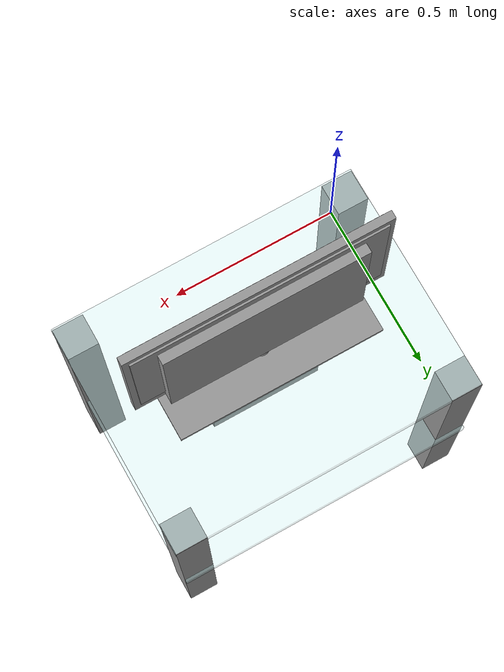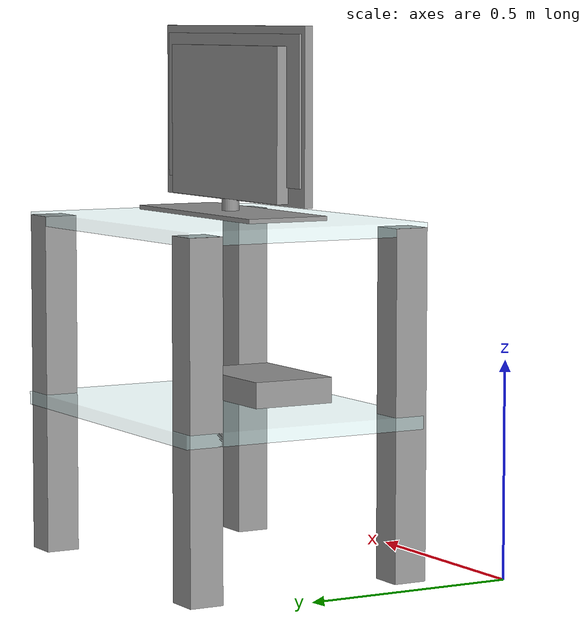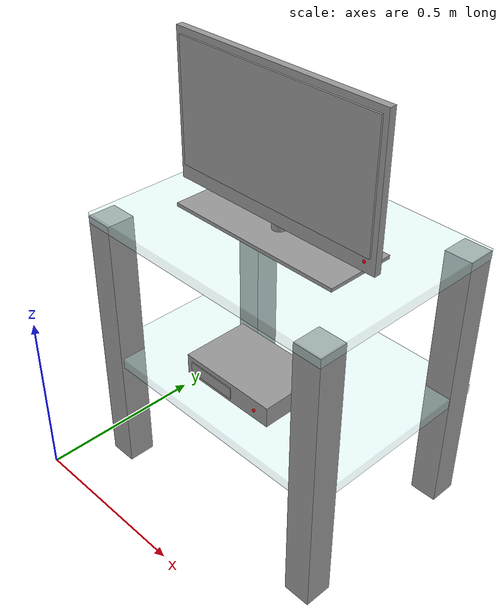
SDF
<?xml version='1.0'?>
<sdf version='1.7'>
  <model name='my_tv_set'>
    <link name='link'>
      <inertial>
        <mass>1</mass>
        <inertia>
          <ixx>0.166667</ixx>
          <ixy>0</ixy>
          <ixz>0</ixz>
          <iyy>0.166667</iyy>
          <iyz>0</iyz>
          <izz>0.166667</izz>
        </inertia>
        <pose>0 0 0 0 -0 0</pose>
      </inertial>
      <self_collide>0</self_collide>
      <enable_wind>0</enable_wind>
      <kinematic>0</kinematic>
      <pose>0.111837 0.203266 0 0 -0 0</pose>
      <gravity>1</gravity>
      <visual name='visual'>
        <geometry>
          <box>
            <size>0.08 0.08 0.8</size>
          </box>
        </geometry>
        <material>
          <script>
            <name>Gazebo/Grey</name>
            <uri>file://media/materials/scripts/gazebo.material</uri>
          </script>
          <shader type='pixel'>
            <normal_map>__default__</normal_map>
          </shader>
          <ambient>0.6 0.6 0.6 1</ambient>
          <diffuse>0.7 0.7 0.7 1</diffuse>
          <specular>0.01 0.01 0.01 1</specular>
          <emissive>0 0 0 1</emissive>
        </material>
        <pose>0 0 0.4 0 -0 0</pose>
        <transparency>0</transparency>
        <cast_shadows>1</cast_shadows>
      </visual>
      <collision name='collision'>
        <laser_retro>0</laser_retro>
        <max_contacts>10</max_contacts>
        <pose>0 0 0.4 0 -0 0</pose>
        <geometry>
          <box>
            <size>0.08 0.08 0.8</size>
          </box>
        </geometry>
        <surface>
          <friction>
            <ode>
              <mu>1</mu>
              <mu2>1</mu2>
              <fdir1>0 0 0</fdir1>
              <slip1>0</slip1>
              <slip2>0</slip2>
            </ode>
            <torsional>
              <coefficient>1</coefficient>
              <patch_radius>0</patch_radius>
              <surface_radius>0</surface_radius>
              <use_patch_radius>1</use_patch_radius>
              <ode>
                <slip>0</slip>
              </ode>
            </torsional>
          </friction>
          <bounce>
            <restitution_coefficient>0</restitution_coefficient>
            <threshold>1e+06</threshold>
          </bounce>
          <contact>
            <collide_without_contact>0</collide_without_contact>
            <collide_without_contact_bitmask>1</collide_without_contact_bitmask>
            <collide_bitmask>1</collide_bitmask>
            <ode>
              <soft_cfm>0</soft_cfm>
              <soft_erp>0.2</soft_erp>
              <kp>1e+13</kp>
              <kd>1</kd>
              <max_vel>0.01</max_vel>
              <min_depth>0</min_depth>
            </ode>
            <bullet>
              <split_impulse>1</split_impulse>
              <split_impulse_penetration_threshold>-0.01</split_impulse_penetration_threshold>
              <soft_cfm>0</soft_cfm>
              <soft_erp>0.2</soft_erp>
              <kp>1e+13</kp>
              <kd>1</kd>
            </bullet>
          </contact>
        </surface>
      </collision>
    </link>
    <link name='link_0'>
      <inertial>
        <mass>1</mass>
        <inertia>
          <ixx>0.166667</ixx>
          <ixy>0</ixy>
          <ixz>0</ixz>
          <iyy>0.166667</iyy>
          <iyz>0</iyz>
          <izz>0.166667</izz>
        </inertia>
        <pose>0 0 0 0 -0 0</pose>
      </inertial>
      <pose>0.470061 0.471071 -0.037751 0 -0 0</pose>
      <gravity>1</gravity>
      <self_collide>0</self_collide>
      <kinematic>0</kinematic>
      <enable_wind>0</enable_wind>
      <visual name='visual'>
        <pose>0 0 0.4 0 -0 0</pose>
        <geometry>
          <box>
            <size>0.8 0.6 0.03</size>
          </box>
        </geometry>
        <material>
          <lighting>1</lighting>
          <script>
            <uri>file://media/materials/scripts/gazebo.material</uri>
            <name>Gazebo/Grey</name>
          </script>
          <shader type='pixel'>
            <normal_map>__default__</normal_map>
          </shader>
          <ambient>0.79 1 1 0.3</ambient>
          <diffuse>0.79 1 1 0.3</diffuse>
          <specular>0.1 0.1 0.1 1</specular>
          <emissive>0 0 0 1</emissive>
        </material>
        <transparency>0.5</transparency>
        <cast_shadows>1</cast_shadows>
      </visual>
      <collision name='collision'>
        <laser_retro>0</laser_retro>
        <max_contacts>10</max_contacts>
        <pose>0 0 0.4 0 -0 0</pose>
        <geometry>
          <box>
            <size>0.8 0.6 0.03</size>
          </box>
        </geometry>
        <surface>
          <friction>
            <ode>
              <mu>1</mu>
              <mu2>1</mu2>
              <fdir1>0 0 0</fdir1>
              <slip1>0</slip1>
              <slip2>0</slip2>
            </ode>
            <torsional>
              <coefficient>1</coefficient>
              <patch_radius>0</patch_radius>
              <surface_radius>0</surface_radius>
              <use_patch_radius>1</use_patch_radius>
              <ode>
                <slip>0</slip>
              </ode>
            </torsional>
          </friction>
          <bounce>
            <restitution_coefficient>0</restitution_coefficient>
            <threshold>1e+06</threshold>
          </bounce>
          <contact>
            <collide_without_contact>0</collide_without_contact>
            <collide_without_contact_bitmask>1</collide_without_contact_bitmask>
            <collide_bitmask>1</collide_bitmask>
            <ode>
              <soft_cfm>0</soft_cfm>
              <soft_erp>0.2</soft_erp>
              <kp>1e+13</kp>
              <kd>1</kd>
              <max_vel>0.01</max_vel>
              <min_depth>0</min_depth>
            </ode>
            <bullet>
              <split_impulse>1</split_impulse>
              <split_impulse_penetration_threshold>-0.01</split_impulse_penetration_threshold>
              <soft_cfm>0</soft_cfm>
              <soft_erp>0.2</soft_erp>
              <kp>1e+13</kp>
              <kd>1</kd>
            </bullet>
          </contact>
        </surface>
      </collision>
    </link>
    <link name='link_0_0'>
      <inertial>
        <mass>1</mass>
        <inertia>
          <ixx>0.166667</ixx>
          <ixy>0</ixy>
          <ixz>0</ixz>
          <iyy>0.166667</iyy>
          <iyz>0</iyz>
          <izz>0.166667</izz>
        </inertia>
        <pose>0 0 0 0 -0 0</pose>
      </inertial>
      <pose>0.470061 0.361348 0.412162 0 -0 0</pose>
      <gravity>1</gravity>
      <self_collide>0</self_collide>
      <kinematic>0</kinematic>
      <enable_wind>0</enable_wind>
      <visual name='visual'>
        <pose>0 0 0 0 -0 0</pose>
        <geometry>
          <box>
            <size>0.3 0.2 0.06</size>
          </box>
        </geometry>
        <material>
          <lighting>1</lighting>
          <script>
            <uri>file://media/materials/scripts/gazebo.material</uri>
            <name>Gazebo/Grey</name>
          </script>
          <shader type='pixel'>
            <normal_map>__default__</normal_map>
          </shader>
          <ambient>0.2 0.2 0.2 0</ambient>
          <diffuse>0.2 0.2 0.2 1</diffuse>
          <specular>0.01 0.01 0.01 1</specular>
          <emissive>0 0 0 1</emissive>
        </material>
        <transparency>0</transparency>
        <cast_shadows>1</cast_shadows>
      </visual>
      <collision name='collision'>
        <laser_retro>0</laser_retro>
        <max_contacts>10</max_contacts>
        <pose>0 0 0 0 -0 0</pose>
        <geometry>
          <box>
            <size>0.3 0.2 0.06</size>
          </box>
        </geometry>
        <surface>
          <friction>
            <ode>
              <mu>1</mu>
              <mu2>1</mu2>
              <fdir1>0 0 0</fdir1>
              <slip1>0</slip1>
              <slip2>0</slip2>
            </ode>
            <torsional>
              <coefficient>1</coefficient>
              <patch_radius>0</patch_radius>
              <surface_radius>0</surface_radius>
              <use_patch_radius>1</use_patch_radius>
              <ode>
                <slip>0</slip>
              </ode>
            </torsional>
          </friction>
          <bounce>
            <restitution_coefficient>0</restitution_coefficient>
            <threshold>1e+06</threshold>
          </bounce>
          <contact>
            <collide_without_contact>0</collide_without_contact>
            <collide_without_contact_bitmask>1</collide_without_contact_bitmask>
            <collide_bitmask>1</collide_bitmask>
            <ode>
              <soft_cfm>0</soft_cfm>
              <soft_erp>0.2</soft_erp>
              <kp>1e+13</kp>
              <kd>1</kd>
              <max_vel>0.01</max_vel>
              <min_depth>0</min_depth>
            </ode>
            <bullet>
              <split_impulse>1</split_impulse>
              <split_impulse_penetration_threshold>-0.01</split_impulse_penetration_threshold>
              <soft_cfm>0</soft_cfm>
              <soft_erp>0.2</soft_erp>
              <kp>1e+13</kp>
              <kd>1</kd>
            </bullet>
          </contact>
        </surface>
      </collision>
    </link>
    <link name='link_0_1'>
      <inertial>
        <mass>1</mass>
        <inertia>
          <ixx>0.166667</ixx>
          <ixy>0</ixy>
          <ixz>0</ixz>
          <iyy>0.166667</iyy>
          <iyz>0</iyz>
          <izz>0.166667</izz>
        </inertia>
        <pose>0 0 0 0 -0 0</pose>
      </inertial>
      <pose>0.41274 0.328539 0.410532 0 -0 0</pose>
      <gravity>1</gravity>
      <self_collide>0</self_collide>
      <kinematic>0</kinematic>
      <enable_wind>0</enable_wind>
      <visual name='visual'>
        <pose>0 0 0 0 -0 0</pose>
        <geometry>
          <box>
            <size>0.15 0.14 0.035</size>
          </box>
        </geometry>
        <material>
          <lighting>1</lighting>
          <script>
            <uri>file://media/materials/scripts/gazebo.material</uri>
            <name>Gazebo/Grey</name>
          </script>
          <shader type='pixel'>
            <normal_map>__default__</normal_map>
          </shader>
          <ambient>0.3 0.3 0.3 1</ambient>
          <diffuse>0.7 0.7 0.7 1</diffuse>
          <specular>0.01 0.01 0.01 1</specular>
          <emissive>0 0 0 1</emissive>
        </material>
        <transparency>0</transparency>
        <cast_shadows>1</cast_shadows>
      </visual>
      <collision name='collision'>
        <laser_retro>0</laser_retro>
        <max_contacts>10</max_contacts>
        <pose>0 0 0 0 -0 0</pose>
        <geometry>
          <box>
            <size>0.15 0.14 0.035</size>
          </box>
        </geometry>
        <surface>
          <friction>
            <ode>
              <mu>1</mu>
              <mu2>1</mu2>
              <fdir1>0 0 0</fdir1>
              <slip1>0</slip1>
              <slip2>0</slip2>
            </ode>
            <torsional>
              <coefficient>1</coefficient>
              <patch_radius>0</patch_radius>
              <surface_radius>0</surface_radius>
              <use_patch_radius>1</use_patch_radius>
              <ode>
                <slip>0</slip>
              </ode>
            </torsional>
          </friction>
          <bounce>
            <restitution_coefficient>0</restitution_coefficient>
            <threshold>1e+06</threshold>
          </bounce>
          <contact>
            <collide_without_contact>0</collide_without_contact>
            <collide_without_contact_bitmask>1</collide_without_contact_bitmask>
            <collide_bitmask>1</collide_bitmask>
            <ode>
              <soft_cfm>0</soft_cfm>
              <soft_erp>0.2</soft_erp>
              <kp>1e+13</kp>
              <kd>1</kd>
              <max_vel>0.01</max_vel>
              <min_depth>0</min_depth>
            </ode>
            <bullet>
              <split_impulse>1</split_impulse>
              <split_impulse_penetration_threshold>-0.01</split_impulse_penetration_threshold>
              <soft_cfm>0</soft_cfm>
              <soft_erp>0.2</soft_erp>
              <kp>1e+13</kp>
              <kd>1</kd>
            </bullet>
          </contact>
        </surface>
      </collision>
    </link>
    <link name='link_0_clone'>
      <inertial>
        <mass>1</mass>
        <inertia>
          <ixx>0.166667</ixx>
          <ixy>0</ixy>
          <ixz>0</ixz>
          <iyy>0.166667</iyy>
          <iyz>0</iyz>
          <izz>0.166667</izz>
        </inertia>
        <pose>0 0 0 0 -0 0</pose>
      </inertial>
      <pose>0.470453 0.462923 0.393901 4e-06 0.005849 0.001188</pose>
      <gravity>1</gravity>
      <self_collide>0</self_collide>
      <kinematic>0</kinematic>
      <enable_wind>0</enable_wind>
      <visual name='visual'>
        <pose>0 0 0.4 0 -0 0</pose>
        <geometry>
          <box>
            <size>0.8 0.6 0.03</size>
          </box>
        </geometry>
        <material>
          <lighting>1</lighting>
          <script>
            <uri>file://media/materials/scripts/gazebo.material</uri>
            <name>Gazebo/Grey</name>
          </script>
          <shader type='pixel'>
            <normal_map>__default__</normal_map>
          </shader>
          <ambient>0.79 1 1 0.3</ambient>
          <diffuse>0.79 1 1 0.3</diffuse>
          <specular>0.1 0.1 0.1 1</specular>
          <emissive>0 0 0 1</emissive>
        </material>
        <transparency>0.5</transparency>
        <cast_shadows>1</cast_shadows>
      </visual>
      <collision name='collision'>
        <laser_retro>0</laser_retro>
        <max_contacts>10</max_contacts>
        <pose>0 0 0.4 0 -0 0</pose>
        <geometry>
          <box>
            <size>0.8 0.6 0.03</size>
          </box>
        </geometry>
        <surface>
          <friction>
            <ode>
              <mu>1</mu>
              <mu2>1</mu2>
              <fdir1>0 0 0</fdir1>
              <slip1>0</slip1>
              <slip2>0</slip2>
            </ode>
            <torsional>
              <coefficient>1</coefficient>
              <patch_radius>0</patch_radius>
              <surface_radius>0</surface_radius>
              <use_patch_radius>1</use_patch_radius>
              <ode>
                <slip>0</slip>
              </ode>
            </torsional>
          </friction>
          <bounce>
            <restitution_coefficient>0</restitution_coefficient>
            <threshold>1e+06</threshold>
          </bounce>
          <contact>
            <collide_without_contact>0</collide_without_contact>
            <collide_without_contact_bitmask>1</collide_without_contact_bitmask>
            <collide_bitmask>1</collide_bitmask>
            <ode>
              <soft_cfm>0</soft_cfm>
              <soft_erp>0.2</soft_erp>
              <kp>1e+13</kp>
              <kd>1</kd>
              <max_vel>0.01</max_vel>
              <min_depth>0</min_depth>
            </ode>
            <bullet>
              <split_impulse>1</split_impulse>
              <split_impulse_penetration_threshold>-0.01</split_impulse_penetration_threshold>
              <soft_cfm>0</soft_cfm>
              <soft_erp>0.2</soft_erp>
              <kp>1e+13</kp>
              <kd>1</kd>
            </bullet>
          </contact>
        </surface>
      </collision>
    </link>
    <link name='link_1'>
      <inertial>
        <mass>1</mass>
        <inertia>
          <ixx>0.1</ixx>
          <ixy>0</ixy>
          <ixz>0</ixz>
          <iyy>0.1</iyy>
          <iyz>0</iyz>
          <izz>0.1</izz>
        </inertia>
        <pose>0 0 0 0 -0 0</pose>
      </inertial>
      <pose>0.574001 0.261573 0.40938 0 -0 0</pose>
      <gravity>1</gravity>
      <self_collide>0</self_collide>
      <kinematic>0</kinematic>
      <enable_wind>0</enable_wind>
      <visual name='visual'>
        <pose>0 0 0 0 -0 0</pose>
        <geometry>
          <sphere>
            <radius>0.005</radius>
          </sphere>
        </geometry>
        <material>
          <lighting>1</lighting>
          <script>
            <uri>file://media/materials/scripts/gazebo.material</uri>
            <name>Gazebo/Grey</name>
          </script>
          <shader type='pixel'>
            <normal_map>__default__</normal_map>
          </shader>
          <ambient>1 0 0 1</ambient>
          <diffuse>1 0 0 1</diffuse>
          <specular>0.01 0.01 0.01 1</specular>
          <emissive>0.5 0 0 1</emissive>
        </material>
        <transparency>0</transparency>
        <cast_shadows>1</cast_shadows>
      </visual>
      <collision name='collision'>
        <laser_retro>0</laser_retro>
        <max_contacts>10</max_contacts>
        <pose>0 0 0 0 -0 0</pose>
        <geometry>
          <sphere>
            <radius>0.005</radius>
          </sphere>
        </geometry>
        <surface>
          <friction>
            <ode>
              <mu>1</mu>
              <mu2>1</mu2>
              <fdir1>0 0 0</fdir1>
              <slip1>0</slip1>
              <slip2>0</slip2>
            </ode>
            <torsional>
              <coefficient>1</coefficient>
              <patch_radius>0</patch_radius>
              <surface_radius>0</surface_radius>
              <use_patch_radius>1</use_patch_radius>
              <ode>
                <slip>0</slip>
              </ode>
            </torsional>
          </friction>
          <bounce>
            <restitution_coefficient>0</restitution_coefficient>
            <threshold>1e+06</threshold>
          </bounce>
          <contact>
            <collide_without_contact>0</collide_without_contact>
            <collide_without_contact_bitmask>1</collide_without_contact_bitmask>
            <collide_bitmask>1</collide_bitmask>
            <ode>
              <soft_cfm>0</soft_cfm>
              <soft_erp>0.2</soft_erp>
              <kp>1e+13</kp>
              <kd>1</kd>
              <max_vel>0.01</max_vel>
              <min_depth>0</min_depth>
            </ode>
            <bullet>
              <split_impulse>1</split_impulse>
              <split_impulse_penetration_threshold>-0.01</split_impulse_penetration_threshold>
              <soft_cfm>0</soft_cfm>
              <soft_erp>0.2</soft_erp>
              <kp>1e+13</kp>
              <kd>1</kd>
            </bullet>
          </contact>
        </surface>
      </collision>
    </link>
    <link name='link_1_0'>
      <inertial>
        <mass>1</mass>
        <inertia>
          <ixx>0.166667</ixx>
          <ixy>0</ixy>
          <ixz>0</ixz>
          <iyy>0.166667</iyy>
          <iyz>0</iyz>
          <izz>0.166667</izz>
        </inertia>
        <pose>0 0 0 0 -0 0</pose>
      </inertial>
      <pose>0.471646 0.442924 0.818235 0 -0 0</pose>
      <gravity>1</gravity>
      <self_collide>0</self_collide>
      <kinematic>0</kinematic>
      <enable_wind>0</enable_wind>
      <visual name='visual'>
        <pose>0 0 0 0 -0 0</pose>
        <geometry>
          <box>
            <size>0.53 0.2 0.01</size>
          </box>
        </geometry>
        <material>
          <lighting>1</lighting>
          <script>
            <uri>file://media/materials/scripts/gazebo.material</uri>
            <name>Gazebo/Grey</name>
          </script>
          <shader type='pixel'>
            <normal_map>__default__</normal_map>
          </shader>
          <ambient>0.1 0.1 0.1 1</ambient>
          <diffuse>0.3 0.3 0.3 1</diffuse>
          <specular>0.01 0.01 0.01 1</specular>
          <emissive>0 0 0 1</emissive>
        </material>
        <transparency>0</transparency>
        <cast_shadows>1</cast_shadows>
      </visual>
      <collision name='collision'>
        <laser_retro>0</laser_retro>
        <max_contacts>10</max_contacts>
        <pose>0 0 0 0 -0 0</pose>
        <geometry>
          <box>
            <size>0.53 0.2 0.01</size>
          </box>
        </geometry>
        <surface>
          <friction>
            <ode>
              <mu>1</mu>
              <mu2>1</mu2>
              <fdir1>0 0 0</fdir1>
              <slip1>0</slip1>
              <slip2>0</slip2>
            </ode>
            <torsional>
              <coefficient>1</coefficient>
              <patch_radius>0</patch_radius>
              <surface_radius>0</surface_radius>
              <use_patch_radius>1</use_patch_radius>
              <ode>
                <slip>0</slip>
              </ode>
            </torsional>
          </friction>
          <bounce>
            <restitution_coefficient>0</restitution_coefficient>
            <threshold>1e+06</threshold>
          </bounce>
          <contact>
            <collide_without_contact>0</collide_without_contact>
            <collide_without_contact_bitmask>1</collide_without_contact_bitmask>
            <collide_bitmask>1</collide_bitmask>
            <ode>
              <soft_cfm>0</soft_cfm>
              <soft_erp>0.2</soft_erp>
              <kp>1e+13</kp>
              <kd>1</kd>
              <max_vel>0.01</max_vel>
              <min_depth>0</min_depth>
            </ode>
            <bullet>
              <split_impulse>1</split_impulse>
              <split_impulse_penetration_threshold>-0.01</split_impulse_penetration_threshold>
              <soft_cfm>0</soft_cfm>
              <soft_erp>0.2</soft_erp>
              <kp>1e+13</kp>
              <kd>1</kd>
            </bullet>
          </contact>
        </surface>
      </collision>
    </link>
    <link name='link_1_clone'>
      <inertial>
        <mass>1</mass>
        <inertia>
          <ixx>0.1</ixx>
          <ixy>0</ixy>
          <ixz>0</ixz>
          <iyy>0.1</iyy>
          <iyz>0</iyz>
          <izz>0.1</izz>
        </inertia>
        <pose>0 0 0 0 -0 0</pose>
      </inertial>
      <pose>0.762041 0.41864 0.873637 0 -0 0</pose>
      <gravity>1</gravity>
      <self_collide>0</self_collide>
      <kinematic>0</kinematic>
      <enable_wind>0</enable_wind>
      <visual name='visual'>
        <pose>0 0 0 0 -0 0</pose>
        <geometry>
          <sphere>
            <radius>0.005</radius>
          </sphere>
        </geometry>
        <material>
          <lighting>1</lighting>
          <script>
            <uri>file://media/materials/scripts/gazebo.material</uri>
            <name>Gazebo/Grey</name>
          </script>
          <shader type='pixel'>
            <normal_map>__default__</normal_map>
          </shader>
          <ambient>1 0 0 1</ambient>
          <diffuse>1 0 0 1</diffuse>
          <specular>0.01 0.01 0.01 1</specular>
          <emissive>0.5 0 0 1</emissive>
        </material>
        <transparency>0</transparency>
        <cast_shadows>1</cast_shadows>
      </visual>
      <collision name='collision'>
        <laser_retro>0</laser_retro>
        <max_contacts>10</max_contacts>
        <pose>0 0 0 0 -0 0</pose>
        <geometry>
          <sphere>
            <radius>0.005</radius>
          </sphere>
        </geometry>
        <surface>
          <friction>
            <ode>
              <mu>1</mu>
              <mu2>1</mu2>
              <fdir1>0 0 0</fdir1>
              <slip1>0</slip1>
              <slip2>0</slip2>
            </ode>
            <torsional>
              <coefficient>1</coefficient>
              <patch_radius>0</patch_radius>
              <surface_radius>0</surface_radius>
              <use_patch_radius>1</use_patch_radius>
              <ode>
                <slip>0</slip>
              </ode>
            </torsional>
          </friction>
          <bounce>
            <restitution_coefficient>0</restitution_coefficient>
            <threshold>1e+06</threshold>
          </bounce>
          <contact>
            <collide_without_contact>0</collide_without_contact>
            <collide_without_contact_bitmask>1</collide_without_contact_bitmask>
            <collide_bitmask>1</collide_bitmask>
            <ode>
              <soft_cfm>0</soft_cfm>
              <soft_erp>0.2</soft_erp>
              <kp>1e+13</kp>
              <kd>1</kd>
              <max_vel>0.01</max_vel>
              <min_depth>0</min_depth>
            </ode>
            <bullet>
              <split_impulse>1</split_impulse>
              <split_impulse_penetration_threshold>-0.01</split_impulse_penetration_threshold>
              <soft_cfm>0</soft_cfm>
              <soft_erp>0.2</soft_erp>
              <kp>1e+13</kp>
              <kd>1</kd>
            </bullet>
          </contact>
        </surface>
      </collision>
    </link>
    <link name='link_2'>
      <inertial>
        <mass>1</mass>
        <inertia>
          <ixx>0.145833</ixx>
          <ixy>0</ixy>
          <ixz>0</ixz>
          <iyy>0.145833</iyy>
          <iyz>0</iyz>
          <izz>0.125</izz>
        </inertia>
        <pose>0 0 0 0 -0 0</pose>
      </inertial>
      <pose>0.472907 0.442924 0.831235 0 -0 0</pose>
      <gravity>1</gravity>
      <self_collide>0</self_collide>
      <kinematic>0</kinematic>
      <enable_wind>0</enable_wind>
      <visual name='visual'>
        <pose>0 0 0 0 -0 0</pose>
        <geometry>
          <cylinder>
            <radius>0.02</radius>
            <length>0.04</length>
          </cylinder>
        </geometry>
        <material>
          <lighting>1</lighting>
          <script>
            <uri>file://media/materials/scripts/gazebo.material</uri>
            <name>Gazebo/Grey</name>
          </script>
          <shader type='pixel'>
            <normal_map>__default__</normal_map>
          </shader>
          <ambient>0.1 0.1 0.1 0</ambient>
          <diffuse>0.3 0.3 0.3 1</diffuse>
          <specular>0.01 0.01 0.01 1</specular>
          <emissive>0 0 0 1</emissive>
        </material>
        <transparency>0</transparency>
        <cast_shadows>1</cast_shadows>
      </visual>
      <collision name='collision'>
        <laser_retro>0</laser_retro>
        <max_contacts>10</max_contacts>
        <pose>0 0 0 0 -0 0</pose>
        <geometry>
          <cylinder>
            <radius>0.02</radius>
            <length>0.04</length>
          </cylinder>
        </geometry>
        <surface>
          <friction>
            <ode>
              <mu>1</mu>
              <mu2>1</mu2>
              <fdir1>0 0 0</fdir1>
              <slip1>0</slip1>
              <slip2>0</slip2>
            </ode>
            <torsional>
              <coefficient>1</coefficient>
              <patch_radius>0</patch_radius>
              <surface_radius>0</surface_radius>
              <use_patch_radius>1</use_patch_radius>
              <ode>
                <slip>0</slip>
              </ode>
            </torsional>
          </friction>
          <bounce>
            <restitution_coefficient>0</restitution_coefficient>
            <threshold>1e+06</threshold>
          </bounce>
          <contact>
            <collide_without_contact>0</collide_without_contact>
            <collide_without_contact_bitmask>1</collide_without_contact_bitmask>
            <collide_bitmask>1</collide_bitmask>
            <ode>
              <soft_cfm>0</soft_cfm>
              <soft_erp>0.2</soft_erp>
              <kp>1e+13</kp>
              <kd>1</kd>
              <max_vel>0.01</max_vel>
              <min_depth>0</min_depth>
            </ode>
            <bullet>
              <split_impulse>1</split_impulse>
              <split_impulse_penetration_threshold>-0.01</split_impulse_penetration_threshold>
              <soft_cfm>0</soft_cfm>
              <soft_erp>0.2</soft_erp>
              <kp>1e+13</kp>
              <kd>1</kd>
            </bullet>
          </contact>
        </surface>
      </collision>
    </link>
    <link name='link_3'>
      <inertial>
        <mass>1</mass>
        <inertia>
          <ixx>0.166667</ixx>
          <ixy>0</ixy>
          <ixz>0</ixz>
          <iyy>0.166667</iyy>
          <iyz>0</iyz>
          <izz>0.166667</izz>
        </inertia>
        <pose>0 0 0 0 -0 0</pose>
      </inertial>
      <pose>0.469996 0.427043 1.0468 0 -0 0</pose>
      <gravity>1</gravity>
      <self_collide>0</self_collide>
      <kinematic>0</kinematic>
      <enable_wind>0</enable_wind>
      <visual name='visual'>
        <pose>0 0 0 0 -0 0</pose>
        <geometry>
          <box>
            <size>0.65 0.02 0.4</size>
          </box>
        </geometry>
        <material>
          <lighting>1</lighting>
          <script>
            <uri>file://media/materials/scripts/gazebo.material</uri>
            <name>Gazebo/Grey</name>
          </script>
          <shader type='pixel'>
            <normal_map>__default__</normal_map>
          </shader>
          <ambient>0.1 0.1 0.1 1</ambient>
          <diffuse>0.3 0.3 0.3 1</diffuse>
          <specular>0.01 0.01 0.01 1</specular>
          <emissive>0 0 0 1</emissive>
        </material>
        <transparency>0</transparency>
        <cast_shadows>1</cast_shadows>
      </visual>
      <collision name='collision'>
        <laser_retro>0</laser_retro>
        <max_contacts>10</max_contacts>
        <pose>0 0 0 0 -0 0</pose>
        <geometry>
          <box>
            <size>0.65 0.02 0.4</size>
          </box>
        </geometry>
        <surface>
          <friction>
            <ode>
              <mu>1</mu>
              <mu2>1</mu2>
              <fdir1>0 0 0</fdir1>
              <slip1>0</slip1>
              <slip2>0</slip2>
            </ode>
            <torsional>
              <coefficient>1</coefficient>
              <patch_radius>0</patch_radius>
              <surface_radius>0</surface_radius>
              <use_patch_radius>1</use_patch_radius>
              <ode>
                <slip>0</slip>
              </ode>
            </torsional>
          </friction>
          <bounce>
            <restitution_coefficient>0</restitution_coefficient>
            <threshold>1e+06</threshold>
          </bounce>
          <contact>
            <collide_without_contact>0</collide_without_contact>
            <collide_without_contact_bitmask>1</collide_without_contact_bitmask>
            <collide_bitmask>1</collide_bitmask>
            <ode>
              <soft_cfm>0</soft_cfm>
              <soft_erp>0.2</soft_erp>
              <kp>1e+13</kp>
              <kd>1</kd>
              <max_vel>0.01</max_vel>
              <min_depth>0</min_depth>
            </ode>
            <bullet>
              <split_impulse>1</split_impulse>
              <split_impulse_penetration_threshold>-0.01</split_impulse_penetration_threshold>
              <soft_cfm>0</soft_cfm>
              <soft_erp>0.2</soft_erp>
              <kp>1e+13</kp>
              <kd>1</kd>
            </bullet>
          </contact>
        </surface>
      </collision>
    </link>
    <link name='link_3_clone'>
      <inertial>
        <mass>1</mass>
        <inertia>
          <ixx>0.166667</ixx>
          <ixy>0</ixy>
          <ixz>0</ixz>
          <iyy>0.166667</iyy>
          <iyz>0</iyz>
          <izz>0.166667</izz>
        </inertia>
        <pose>0 0 0 0 -0 0</pose>
      </inertial>
      <pose>0.467494 0.45061 1.02711 0 -0 0</pose>
      <gravity>1</gravity>
      <self_collide>0</self_collide>
      <kinematic>0</kinematic>
      <enable_wind>0</enable_wind>
      <visual name='visual'>
        <pose>0 0 0 0 -0 0</pose>
        <geometry>
          <box>
            <size>0.5 0.03 0.35</size>
          </box>
        </geometry>
        <material>
          <lighting>1</lighting>
          <script>
            <uri>file://media/materials/scripts/gazebo.material</uri>
            <name>Gazebo/Grey</name>
          </script>
          <shader type='pixel'>
            <normal_map>__default__</normal_map>
          </shader>
          <ambient>0.1 0.1 0.1 1</ambient>
          <diffuse>0.3 0.3 0.3 1</diffuse>
          <specular>0.01 0.01 0.01 1</specular>
          <emissive>0 0 0 1</emissive>
        </material>
        <transparency>0</transparency>
        <cast_shadows>1</cast_shadows>
      </visual>
      <collision name='collision'>
        <laser_retro>0</laser_retro>
        <max_contacts>10</max_contacts>
        <pose>0 0 0 0 -0 0</pose>
        <geometry>
          <box>
            <size>0.5 0.03 0.35</size>
          </box>
        </geometry>
        <surface>
          <friction>
            <ode>
              <mu>1</mu>
              <mu2>1</mu2>
              <fdir1>0 0 0</fdir1>
              <slip1>0</slip1>
              <slip2>0</slip2>
            </ode>
            <torsional>
              <coefficient>1</coefficient>
              <patch_radius>0</patch_radius>
              <surface_radius>0</surface_radius>
              <use_patch_radius>1</use_patch_radius>
              <ode>
                <slip>0</slip>
              </ode>
            </torsional>
          </friction>
          <bounce>
            <restitution_coefficient>0</restitution_coefficient>
            <threshold>1e+06</threshold>
          </bounce>
          <contact>
            <collide_without_contact>0</collide_without_contact>
            <collide_without_contact_bitmask>1</collide_without_contact_bitmask>
            <collide_bitmask>1</collide_bitmask>
            <ode>
              <soft_cfm>0</soft_cfm>
              <soft_erp>0.2</soft_erp>
              <kp>1e+13</kp>
              <kd>1</kd>
              <max_vel>0.01</max_vel>
              <min_depth>0</min_depth>
            </ode>
            <bullet>
              <split_impulse>1</split_impulse>
              <split_impulse_penetration_threshold>-0.01</split_impulse_penetration_threshold>
              <soft_cfm>0</soft_cfm>
              <soft_erp>0.2</soft_erp>
              <kp>1e+13</kp>
              <kd>1</kd>
            </bullet>
          </contact>
        </surface>
      </collision>
    </link>
    <link name='link_3_clone_clone'>
      <inertial>
        <mass>1</mass>
        <inertia>
          <ixx>0.166667</ixx>
          <ixy>0</ixy>
          <ixz>0</ixz>
          <iyy>0.166667</iyy>
          <iyz>0</iyz>
          <izz>0.166667</izz>
        </inertia>
        <pose>0 0 0 0 -0 0</pose>
      </inertial>
      <pose>0.469808 0.426878 1.05906 0 -0 0</pose>
      <gravity>1</gravity>
      <self_collide>0</self_collide>
      <kinematic>0</kinematic>
      <enable_wind>0</enable_wind>
      <visual name='visual'>
        <pose>0 0 0 0 -0 0</pose>
        <geometry>
          <box>
            <size>0.62 0.03 0.34</size>
          </box>
        </geometry>
        <material>
          <lighting>1</lighting>
          <script>
            <uri>file://media/materials/scripts/gazebo.material</uri>
            <name>Gazebo/Grey</name>
          </script>
          <shader type='pixel'>
            <normal_map>__default__</normal_map>
          </shader>
          <ambient>0.3 0.3 0.3 1</ambient>
          <diffuse>0.4 0.4 0.4 1</diffuse>
          <specular>0.01 0.01 0.01 1</specular>
          <emissive>0 0 0 1</emissive>
        </material>
        <transparency>0</transparency>
        <cast_shadows>1</cast_shadows>
      </visual>
      <collision name='collision'>
        <laser_retro>0</laser_retro>
        <max_contacts>10</max_contacts>
        <pose>0 0 0 0 -0 0</pose>
        <geometry>
          <box>
            <size>0.62 0.03 0.34</size>
          </box>
        </geometry>
        <surface>
          <friction>
            <ode>
              <mu>1</mu>
              <mu2>1</mu2>
              <fdir1>0 0 0</fdir1>
              <slip1>0</slip1>
              <slip2>0</slip2>
            </ode>
            <torsional>
              <coefficient>1</coefficient>
              <patch_radius>0</patch_radius>
              <surface_radius>0</surface_radius>
              <use_patch_radius>1</use_patch_radius>
              <ode>
                <slip>0</slip>
              </ode>
            </torsional>
          </friction>
          <bounce>
            <restitution_coefficient>0</restitution_coefficient>
            <threshold>1e+06</threshold>
          </bounce>
          <contact>
            <collide_without_contact>0</collide_without_contact>
            <collide_without_contact_bitmask>1</collide_without_contact_bitmask>
            <collide_bitmask>1</collide_bitmask>
            <ode>
              <soft_cfm>0</soft_cfm>
              <soft_erp>0.2</soft_erp>
              <kp>1e+13</kp>
              <kd>1</kd>
              <max_vel>0.01</max_vel>
              <min_depth>0</min_depth>
            </ode>
            <bullet>
              <split_impulse>1</split_impulse>
              <split_impulse_penetration_threshold>-0.01</split_impulse_penetration_threshold>
              <soft_cfm>0</soft_cfm>
              <soft_erp>0.2</soft_erp>
              <kp>1e+13</kp>
              <kd>1</kd>
            </bullet>
          </contact>
        </surface>
      </collision>
    </link>
    <link name='link_clone'>
      <inertial>
        <mass>1</mass>
        <inertia>
          <ixx>0.166667</ixx>
          <ixy>0</ixy>
          <ixz>0</ixz>
          <iyy>0.166667</iyy>
          <iyz>0</iyz>
          <izz>0.166667</izz>
        </inertia>
        <pose>0 0 0 0 -0 0</pose>
      </inertial>
      <self_collide>0</self_collide>
      <enable_wind>0</enable_wind>
      <kinematic>0</kinematic>
      <pose>0.831942 0.205036 0 0 -0 0</pose>
      <gravity>1</gravity>
      <visual name='visual'>
        <geometry>
          <box>
            <size>0.08 0.08 0.8</size>
          </box>
        </geometry>
        <material>
          <script>
            <name>Gazebo/Grey</name>
            <uri>file://media/materials/scripts/gazebo.material</uri>
          </script>
          <shader type='pixel'>
            <normal_map>__default__</normal_map>
          </shader>
          <ambient>0.6 0.6 0.6 1</ambient>
          <diffuse>0.7 0.7 0.7 1</diffuse>
          <specular>0.01 0.01 0.01 1</specular>
          <emissive>0 0 0 1</emissive>
        </material>
        <pose>0 0 0.4 0 -0 0</pose>
        <transparency>0</transparency>
        <cast_shadows>1</cast_shadows>
      </visual>
      <collision name='collision'>
        <laser_retro>0</laser_retro>
        <max_contacts>10</max_contacts>
        <pose>0 0 0.4 0 -0 0</pose>
        <geometry>
          <box>
            <size>0.08 0.08 0.8</size>
          </box>
        </geometry>
        <surface>
          <friction>
            <ode>
              <mu>1</mu>
              <mu2>1</mu2>
              <fdir1>0 0 0</fdir1>
              <slip1>0</slip1>
              <slip2>0</slip2>
            </ode>
            <torsional>
              <coefficient>1</coefficient>
              <patch_radius>0</patch_radius>
              <surface_radius>0</surface_radius>
              <use_patch_radius>1</use_patch_radius>
              <ode>
                <slip>0</slip>
              </ode>
            </torsional>
          </friction>
          <bounce>
            <restitution_coefficient>0</restitution_coefficient>
            <threshold>1e+06</threshold>
          </bounce>
          <contact>
            <collide_without_contact>0</collide_without_contact>
            <collide_without_contact_bitmask>1</collide_without_contact_bitmask>
            <collide_bitmask>1</collide_bitmask>
            <ode>
              <soft_cfm>0</soft_cfm>
              <soft_erp>0.2</soft_erp>
              <kp>1e+13</kp>
              <kd>1</kd>
              <max_vel>0.01</max_vel>
              <min_depth>0</min_depth>
            </ode>
            <bullet>
              <split_impulse>1</split_impulse>
              <split_impulse_penetration_threshold>-0.01</split_impulse_penetration_threshold>
              <soft_cfm>0</soft_cfm>
              <soft_erp>0.2</soft_erp>
              <kp>1e+13</kp>
              <kd>1</kd>
            </bullet>
          </contact>
        </surface>
      </collision>
    </link>
    <link name='link_clone_0'>
      <inertial>
        <mass>1</mass>
        <inertia>
          <ixx>0.166667</ixx>
          <ixy>0</ixy>
          <ixz>0</ixz>
          <iyy>0.166667</iyy>
          <iyz>0</iyz>
          <izz>0.166667</izz>
        </inertia>
        <pose>0 0 0 0 -0 0</pose>
      </inertial>
      <self_collide>0</self_collide>
      <enable_wind>0</enable_wind>
      <kinematic>0</kinematic>
      <pose>0.110061 0.7232 9e-06 0 -0 0</pose>
      <gravity>1</gravity>
      <visual name='visual'>
        <geometry>
          <box>
            <size>0.08 0.08 0.8</size>
          </box>
        </geometry>
        <material>
          <script>
            <name>Gazebo/Grey</name>
            <uri>file://media/materials/scripts/gazebo.material</uri>
          </script>
          <shader type='pixel'>
            <normal_map>__default__</normal_map>
          </shader>
          <ambient>0.6 0.6 0.6 1</ambient>
          <diffuse>0.7 0.7 0.7 1</diffuse>
          <specular>0.01 0.01 0.01 1</specular>
          <emissive>0 0 0 1</emissive>
        </material>
        <pose>0 0 0.4 0 -0 0</pose>
        <transparency>0</transparency>
        <cast_shadows>1</cast_shadows>
      </visual>
      <collision name='collision'>
        <laser_retro>0</laser_retro>
        <max_contacts>10</max_contacts>
        <pose>0 0 0.4 0 -0 0</pose>
        <geometry>
          <box>
            <size>0.08 0.08 0.8</size>
          </box>
        </geometry>
        <surface>
          <friction>
            <ode>
              <mu>1</mu>
              <mu2>1</mu2>
              <fdir1>0 0 0</fdir1>
              <slip1>0</slip1>
              <slip2>0</slip2>
            </ode>
            <torsional>
              <coefficient>1</coefficient>
              <patch_radius>0</patch_radius>
              <surface_radius>0</surface_radius>
              <use_patch_radius>1</use_patch_radius>
              <ode>
                <slip>0</slip>
              </ode>
            </torsional>
          </friction>
          <bounce>
            <restitution_coefficient>0</restitution_coefficient>
            <threshold>1e+06</threshold>
          </bounce>
          <contact>
            <collide_without_contact>0</collide_without_contact>
            <collide_without_contact_bitmask>1</collide_without_contact_bitmask>
            <collide_bitmask>1</collide_bitmask>
            <ode>
              <soft_cfm>0</soft_cfm>
              <soft_erp>0.2</soft_erp>
              <kp>1e+13</kp>
              <kd>1</kd>
              <max_vel>0.01</max_vel>
              <min_depth>0</min_depth>
            </ode>
            <bullet>
              <split_impulse>1</split_impulse>
              <split_impulse_penetration_threshold>-0.01</split_impulse_penetration_threshold>
              <soft_cfm>0</soft_cfm>
              <soft_erp>0.2</soft_erp>
              <kp>1e+13</kp>
              <kd>1</kd>
            </bullet>
          </contact>
        </surface>
      </collision>
    </link>
    <link name='link_clone_0_clone'>
      <inertial>
        <mass>1</mass>
        <inertia>
          <ixx>0.166667</ixx>
          <ixy>0</ixy>
          <ixz>0</ixz>
          <iyy>0.166667</iyy>
          <iyz>0</iyz>
          <izz>0.166667</izz>
        </inertia>
        <pose>0 0 0 0 -0 0</pose>
      </inertial>
      <self_collide>0</self_collide>
      <enable_wind>0</enable_wind>
      <kinematic>0</kinematic>
      <pose>0.831088 0.724155 0 0 -0 0</pose>
      <gravity>1</gravity>
      <visual name='visual'>
        <geometry>
          <box>
            <size>0.08 0.08 0.8</size>
          </box>
        </geometry>
        <material>
          <script>
            <name>Gazebo/Grey</name>
            <uri>file://media/materials/scripts/gazebo.material</uri>
          </script>
          <shader type='pixel'>
            <normal_map>__default__</normal_map>
          </shader>
          <ambient>0.6 0.6 0.6 1</ambient>
          <diffuse>0.7 0.7 0.7 1</diffuse>
          <specular>0.01 0.01 0.01 1</specular>
          <emissive>0 0 0 1</emissive>
        </material>
        <pose>0 0 0.4 0 -0 0</pose>
        <transparency>0</transparency>
        <cast_shadows>1</cast_shadows>
      </visual>
      <collision name='collision'>
        <laser_retro>0</laser_retro>
        <max_contacts>10</max_contacts>
        <pose>0 0 0.4 0 -0 0</pose>
        <geometry>
          <box>
            <size>0.08 0.08 0.8</size>
          </box>
        </geometry>
        <surface>
          <friction>
            <ode>
              <mu>1</mu>
              <mu2>1</mu2>
              <fdir1>0 0 0</fdir1>
              <slip1>0</slip1>
              <slip2>0</slip2>
            </ode>
            <torsional>
              <coefficient>1</coefficient>
              <patch_radius>0</patch_radius>
              <surface_radius>0</surface_radius>
              <use_patch_radius>1</use_patch_radius>
              <ode>
                <slip>0</slip>
              </ode>
            </torsional>
          </friction>
          <bounce>
            <restitution_coefficient>0</restitution_coefficient>
            <threshold>1e+06</threshold>
          </bounce>
          <contact>
            <collide_without_contact>0</collide_without_contact>
            <collide_without_contact_bitmask>1</collide_without_contact_bitmask>
            <collide_bitmask>1</collide_bitmask>
            <ode>
              <soft_cfm>0</soft_cfm>
              <soft_erp>0.2</soft_erp>
              <kp>1e+13</kp>
              <kd>1</kd>
              <max_vel>0.01</max_vel>
              <min_depth>0</min_depth>
            </ode>
            <bullet>
              <split_impulse>1</split_impulse>
              <split_impulse_penetration_threshold>-0.01</split_impulse_penetration_threshold>
              <soft_cfm>0</soft_cfm>
              <soft_erp>0.2</soft_erp>
              <kp>1e+13</kp>
              <kd>1</kd>
            </bullet>
          </contact>
        </surface>
      </collision>
    </link>
    <joint name='link_0_0_JOINT_1' type='fixed'>
      <parent>link_0_0</parent>
      <child>link_1</child>
      <pose>0 0 0 0 -0 0</pose>
      <physics>
        <ode>
          <limit>
            <cfm>0</cfm>
            <erp>0.2</erp>
          </limit>
          <suspension>
            <cfm>0</cfm>
            <erp>0.2</erp>
          </suspension>
        </ode>
      </physics>
    </joint>
    <joint name='link_0_JOINT_0' type='fixed'>
      <parent>link_0</parent>
      <child>link_0_0</child>
      <pose>0 0 0 0 -0 0</pose>
      <physics>
        <ode>
          <limit>
            <cfm>0</cfm>
            <erp>0.2</erp>
          </limit>
          <suspension>
            <cfm>0</cfm>
            <erp>0.2</erp>
          </suspension>
        </ode>
      </physics>
    </joint>
    <joint name='link_0_JOINT_1' type='fixed'>
      <parent>link_0</parent>
      <child>link_clone_0</child>
      <pose>0 0 0 0 -0 0</pose>
      <physics>
        <ode>
          <limit>
            <cfm>0</cfm>
            <erp>0.2</erp>
          </limit>
          <suspension>
            <cfm>0</cfm>
            <erp>0.2</erp>
          </suspension>
        </ode>
      </physics>
    </joint>
    <joint name='link_0_JOINT_2' type='fixed'>
      <parent>link_0</parent>
      <child>link_clone</child>
      <pose>0 0 0 0 -0 0</pose>
      <physics>
        <ode>
          <limit>
            <cfm>0</cfm>
            <erp>0.2</erp>
          </limit>
          <suspension>
            <cfm>0</cfm>
            <erp>0.2</erp>
          </suspension>
        </ode>
      </physics>
    </joint>
    <joint name='link_0_JOINT_4' type='fixed'>
      <parent>link_0</parent>
      <child>link_clone_0_clone</child>
      <pose>0 0 0 0 -0 0</pose>
      <physics>
        <ode>
          <limit>
            <cfm>0</cfm>
            <erp>0.2</erp>
          </limit>
          <suspension>
            <cfm>0</cfm>
            <erp>0.2</erp>
          </suspension>
        </ode>
      </physics>
    </joint>
    <joint name='link_0_clone_JOINT_0_0' type='fixed'>
      <parent>link_0_clone</parent>
      <child>link_1_0</child>
      <pose>0 0 0 0 -0 0</pose>
      <physics>
        <ode>
          <limit>
            <cfm>0</cfm>
            <erp>0.2</erp>
          </limit>
          <suspension>
            <cfm>0</cfm>
            <erp>0.2</erp>
          </suspension>
        </ode>
      </physics>
    </joint>
    <joint name='link_0_clone_JOINT_0' type='fixed'>
      <parent>link_0_clone</parent>
      <child>link</child>
      <pose>0 0 0 0 -0 0</pose>
      <physics>
        <ode>
          <limit>
            <cfm>0</cfm>
            <erp>0.2</erp>
          </limit>
          <suspension>
            <cfm>0</cfm>
            <erp>0.2</erp>
          </suspension>
        </ode>
      </physics>
    </joint>
    <joint name='link_0_clone_JOINT_3' type='fixed'>
      <parent>link_0_clone</parent>
      <child>link_clone</child>
      <pose>0 0 0 0 -0 0</pose>
      <physics>
        <ode>
          <limit>
            <cfm>0</cfm>
            <erp>0.2</erp>
          </limit>
          <suspension>
            <cfm>0</cfm>
            <erp>0.2</erp>
          </suspension>
        </ode>
      </physics>
    </joint>
    <joint name='link_0_clone_JOINT_5' type='fixed'>
      <parent>link_0_clone</parent>
      <child>link</child>
      <pose>0 0 0 0 -0 0</pose>
      <physics>
        <ode>
          <limit>
            <cfm>0</cfm>
            <erp>0.2</erp>
          </limit>
          <suspension>
            <cfm>0</cfm>
            <erp>0.2</erp>
          </suspension>
        </ode>
      </physics>
    </joint>
    <joint name='link_1_0_JOINT_1' type='fixed'>
      <parent>link_1_0</parent>
      <child>link_2</child>
      <pose>0 0 0 0 -0 0</pose>
      <physics>
        <ode>
          <limit>
            <cfm>0</cfm>
            <erp>0.2</erp>
          </limit>
          <suspension>
            <cfm>0</cfm>
            <erp>0.2</erp>
          </suspension>
        </ode>
      </physics>
    </joint>
    <joint name='link_2_JOINT_2' type='fixed'>
      <parent>link_2</parent>
      <child>link_3</child>
      <pose>0 0 0 0 -0 0</pose>
      <physics>
        <ode>
          <limit>
            <cfm>0</cfm>
            <erp>0.2</erp>
          </limit>
          <suspension>
            <cfm>0</cfm>
            <erp>0.2</erp>
          </suspension>
        </ode>
      </physics>
    </joint>
    <static>1</static>
    <allow_auto_disable>1</allow_auto_disable>
  </model>
</sdf>
